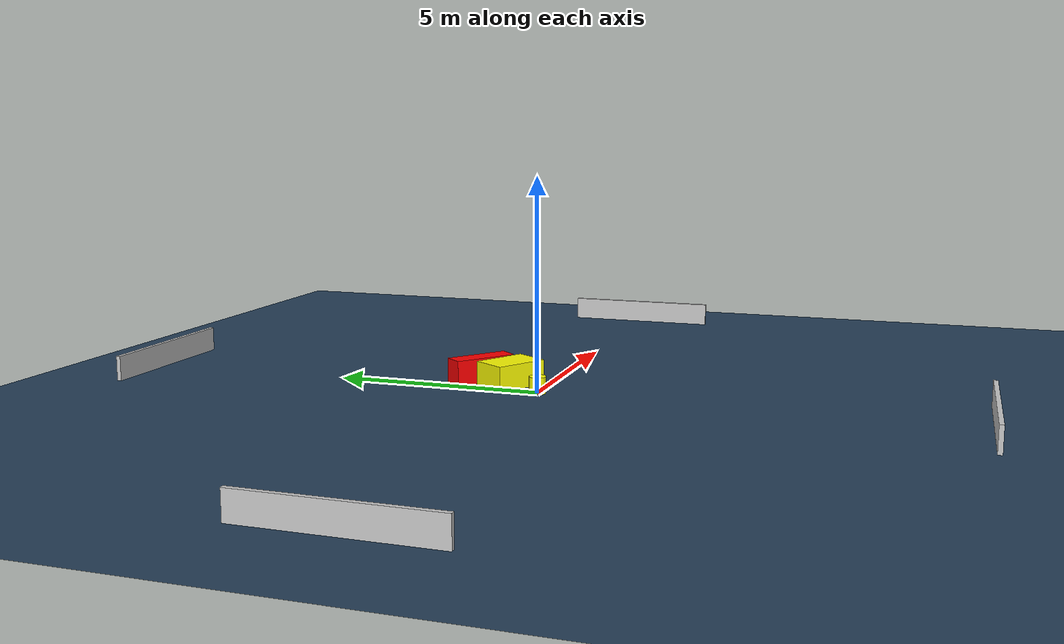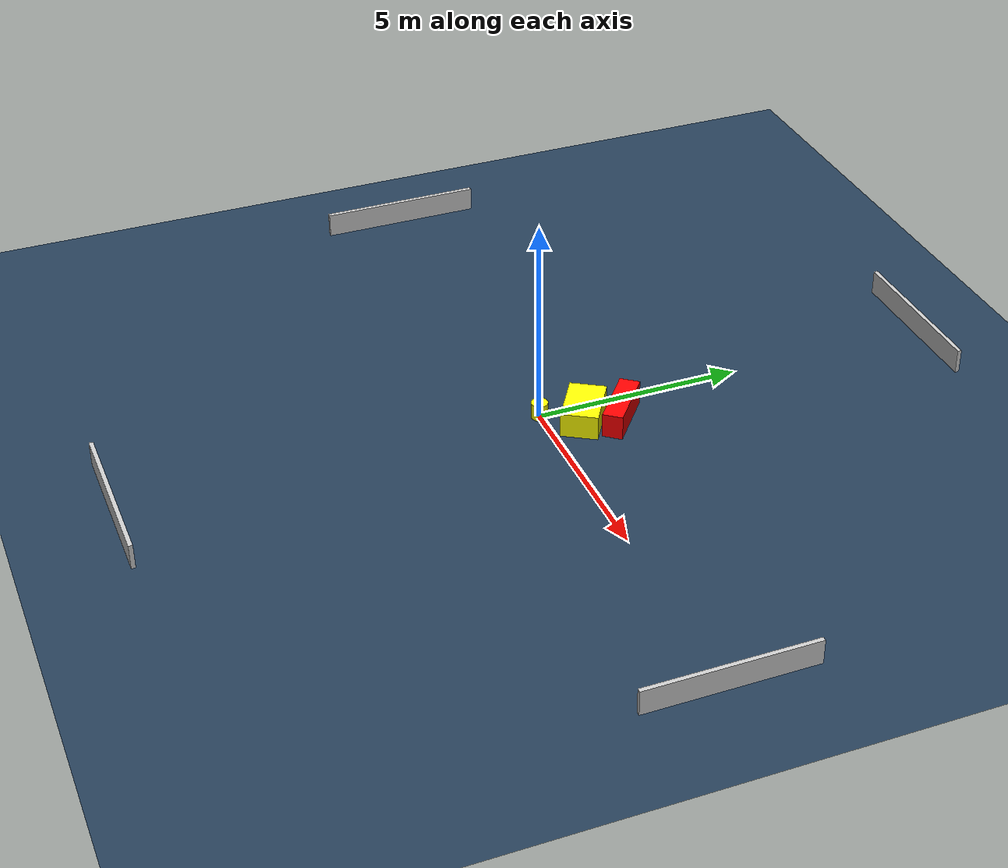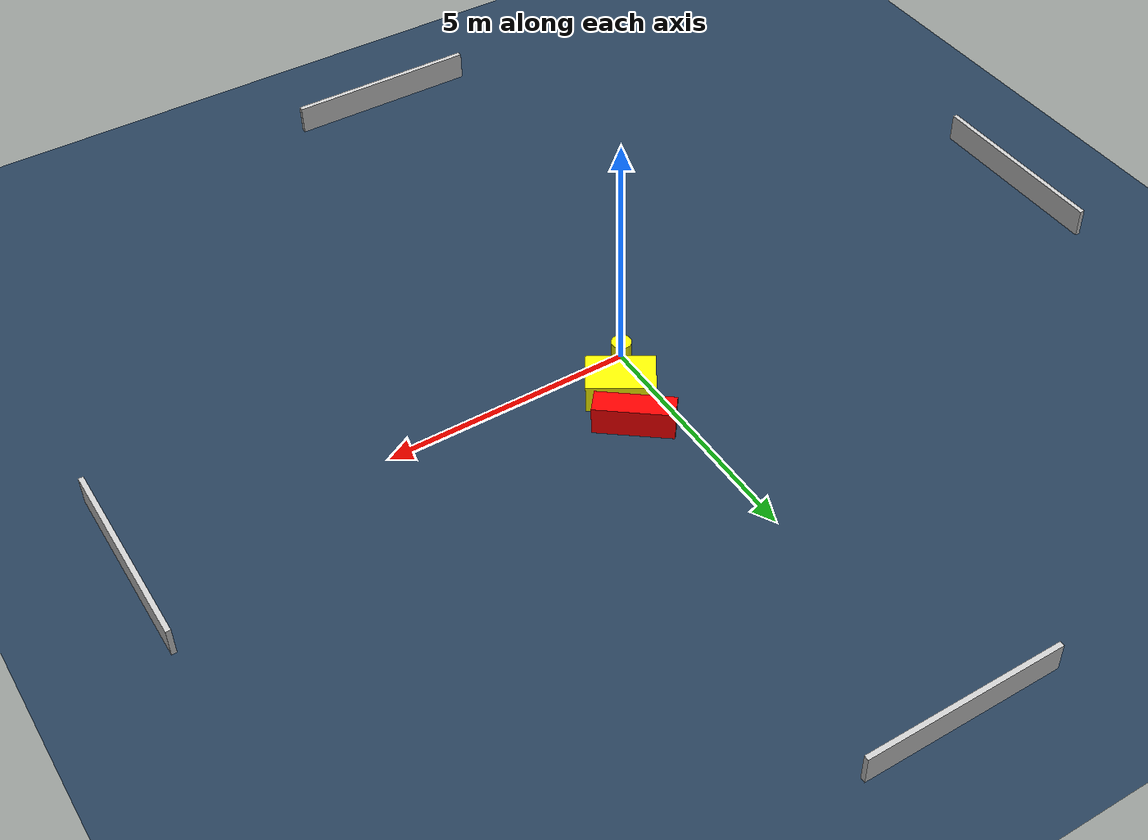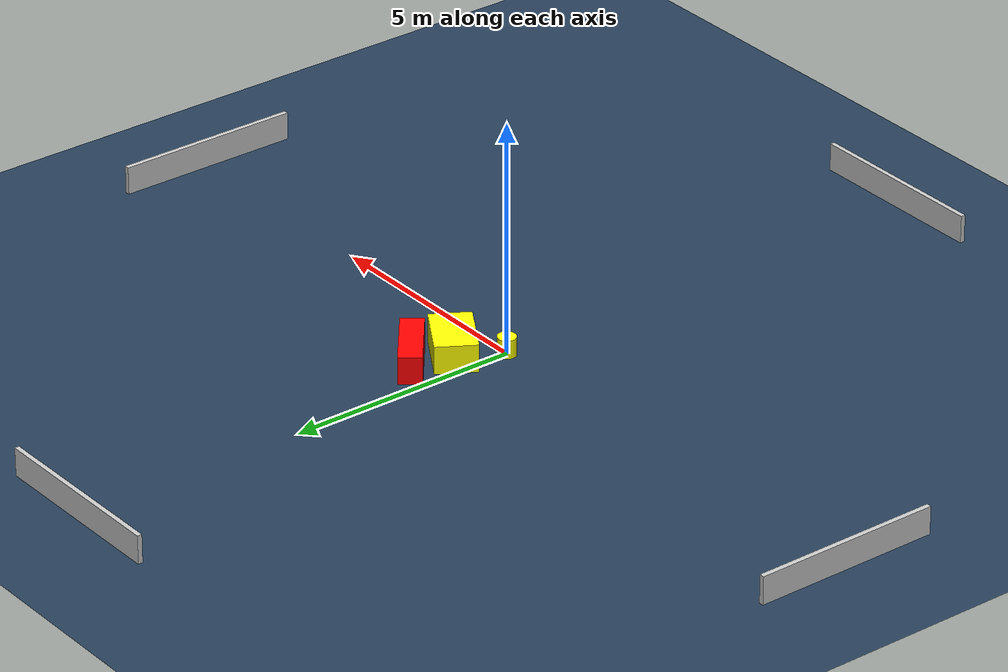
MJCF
<?xml version="1.0" ?>
<mujoco model="generated_environment">
  <option timestep="0.01" integrator="RK4" cone="elliptic"/>
  <default>
    <geom density="1"/>
  </default>
  <asset>
    <texture builtin="gradient" height="3072" name="skybox" rgb1="0.3 0.5 0.7" rgb2="0 0 0" type="skybox" width="512"/>
    <texture builtin="checker" height="300" name="groundplane" rgb1="0.2 0.3 0.4" rgb2="0.1 0.2 0.3" type="2d" width="300"/>
    <material name="groundplane" reflectance="0.2" texrepeat="5 5" texture="groundplane"/>
  </asset>
  <worldbody>
    <light dir="0 0 -1" directional="true" pos="0 0 1.5"/>
    <geom condim="3" friction="0.5 0.005 0.001" material="groundplane" name="floor" pos="0 0 0" size="0 0 0.05" type="plane"/>
    <body name="walls">
      <geom name="wall_1" condim="4" pos="-10.0 0.0 0.3" rgba="0.800000011920929 0.800000011920929 0.800000011920929 1.0" size="0.05 2.0 0.3" type="box"/>
      <geom name="wall_2" condim="4" pos="10.0 0.0 0.3" rgba="0.800000011920929 0.800000011920929 0.800000011920929 1.0" size="0.05 2.0 0.3" type="box"/>
      <geom name="wall_3" condim="4" pos="0.0 -10.0 0.3" rgba="0.800000011920929 0.800000011920929 0.800000011920929 1.0" size="2.0 0.05 0.3" type="box"/>
      <geom name="wall_4" condim="4" pos="0.0 10.0 0.3" rgba="0.800000011920929 0.800000011920929 0.800000011920929 1.0" size="2.0 0.05 0.3" type="box"/>
    </body>
    <body name="robot">
      <joint name="joint_x" type="slide" pos="0 0 0" axis="1 0 0"/>
      <joint name="joint_y" type="slide" pos="0 0 0" axis="0 1 0"/>
      <geom name="robot" type="cylinder" pos="0.0 0.0 0.2" size="0.2 0.2 0.0" mass="5.0" friction="1.0 0.005 0.0001" condim="4" rgba="1.0 1.0 0.0 1.0"/>
    </body>
    <body name="obstacle_1_movable">
      <geom name="obstacle_1_movable" condim="4" pos="0.5711235235320719 0.8679108789750556 0.3" euler="0 0 58.135771916433214" friction="0.0 0.005 0.001" rgba="1.0 1.0 0.0 1.0" size="0.43906133673627135 0.6632318170450298 0.3" type="box" mass="0.1"/>
      <joint type="free"/>
    </body>
    <body name="obstacle_2_static">
      <geom name="obstacle_2_static" condim="4" pos="0.8089493973438355 1.7061709393731561 0.3" euler="0 0 321.32064487004817" friction="0.0 0.005 0.001" rgba="1.0 0.0 0.0 1.0" size="0.7777754872872253 0.24354836628235546 0.3" type="box"/>
    </body>
  </worldbody>
  <actuator>
    <motor name="actuator_x" joint="joint_x" gear="1" ctrlrange="-1 1"/>
    <motor name="actuator_y" joint="joint_y" gear="1" ctrlrange="-1 1"/>
  </actuator>
</mujoco>
